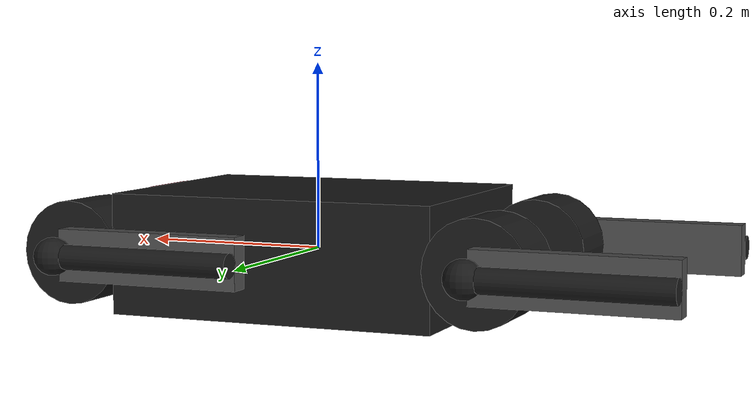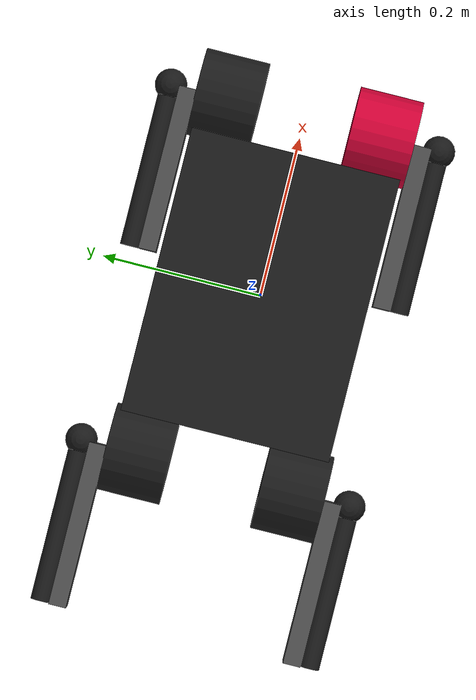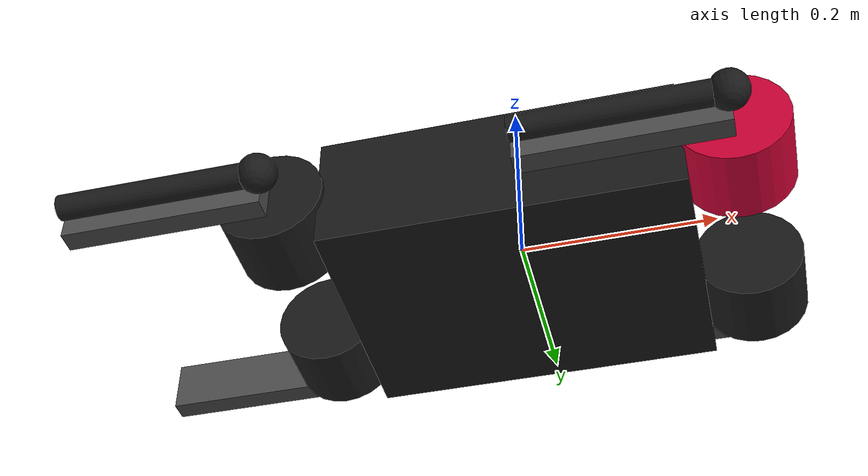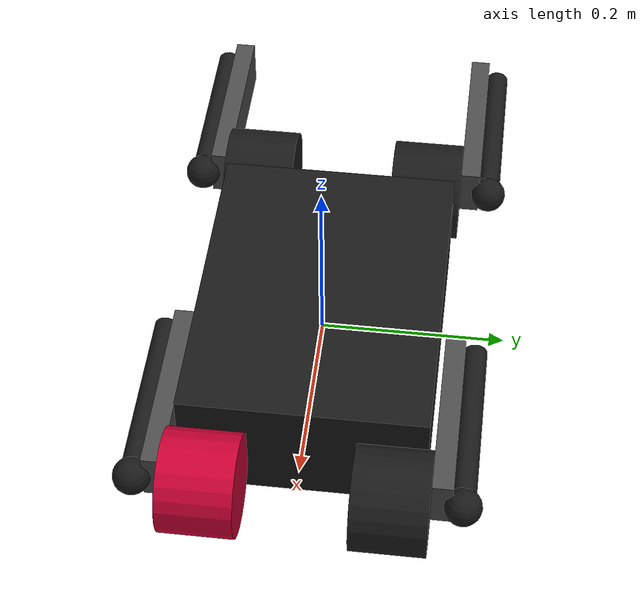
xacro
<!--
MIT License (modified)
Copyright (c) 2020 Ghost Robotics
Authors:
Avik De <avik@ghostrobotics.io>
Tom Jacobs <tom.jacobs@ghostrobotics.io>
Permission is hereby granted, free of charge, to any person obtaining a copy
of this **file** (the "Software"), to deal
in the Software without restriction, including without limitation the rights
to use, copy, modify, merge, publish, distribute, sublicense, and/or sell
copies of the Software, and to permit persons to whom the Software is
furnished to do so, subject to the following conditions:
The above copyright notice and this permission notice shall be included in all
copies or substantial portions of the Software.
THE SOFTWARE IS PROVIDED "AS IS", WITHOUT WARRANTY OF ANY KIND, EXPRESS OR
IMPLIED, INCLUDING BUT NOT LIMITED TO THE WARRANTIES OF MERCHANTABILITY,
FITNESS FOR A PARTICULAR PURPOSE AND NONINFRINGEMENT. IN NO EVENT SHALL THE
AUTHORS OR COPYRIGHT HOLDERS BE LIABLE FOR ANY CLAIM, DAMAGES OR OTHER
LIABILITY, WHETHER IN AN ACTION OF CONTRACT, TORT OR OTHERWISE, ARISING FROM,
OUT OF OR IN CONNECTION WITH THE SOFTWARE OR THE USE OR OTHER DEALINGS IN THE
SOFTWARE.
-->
<?xml version="1.0"?>

<robot xmlns:xacro="http://www.ros.org/wiki/xacro" name="ngr">

	<!-- Define parameters -->
	<!-- bodyLength + hipdx should be equal to front to back hip distance -->
	<!-- dy +  dPodAxisToEdge + upperLegWidth should be equal to the center to toe distance along y axis-->
	<xacro:property name="pi" value="3.14159265359"/>
	<xacro:property name="bodyLength" value="0.3563"/>
	<xacro:property name="bodyWidth" value="0.2627"/>
	<xacro:property name="bodyHeight" value="0.1279"/>
	<xacro:property name="bodyMass" value="5.8656"/>
	<xacro:property name="podMass" value="0.575"/>   <!-- what is this -->
	<xacro:property name="upperLegMass" value="2.823"/>  <!-- incl hip motor -->
	<xacro:property name="upperLegIxx" value="0.0026851"/>
	<xacro:property name="upperLegIyy" value="0.010059"/>
	<xacro:property name="upperLegIzz" value="0.0076466"/>
	<xacro:property name="lowerLegMass" value="1.0526"/>
	<xacro:property name="lowerLegIxx" value="0.00093898"/>
	<xacro:property name="lowerLegIyy" value="0.00042016"/>
	<xacro:property name="lowerLegIzz" value="0.00055413"/>
	<xacro:property name="toeMass" value="0.015"/>
	<xacro:property name="upperLegLength" value="0.206"/>
	<xacro:property name="upperLegWidth" value="0.022"/>
	<xacro:property name="upperLegHeight" value="0.055"/>
	<xacro:property name="lowerLegLength" value="0.206"/>
     <!-- below properties are from spirit descrp -->
	<xacro:property name="lowerLegRadius" value="0.013"/> <!--visual only-->
	<xacro:property name="podLength" value="0.08"/>
	<xacro:property name="podRadius" value="0.055"/>
	<xacro:property name="dPodAxisToEdge" value="0.028"/> <!--center of pod cylinder to the ab axis-->
	<xacro:property name="abOffs" value="0.10098"/>
	<xacro:property name="dx" value="0.2263"/>
	<xacro:property name="dy" value="0.07"/>
	<xacro:property name="toeRadius" value="0.02"/>
	<xacro:property name="toeOffset" value="0.0"/>
	<xacro:property name="toeStiffness" value="30000.0"/>
	<xacro:property name="toeDamping" value="1000.0"/>
	<xacro:property name="toeSpinningFriction" value="0.3"/>
	<xacro:property name="toeLateralFriction" value="3.0"/>
	<xacro:property name="abKinLimit" value="0.707"/>
	<xacro:property name="abSpeedLimit" value="30"/>
	<xacro:property name="abEffortLimit" value="40"/>
	<xacro:property name="jointSpeedLimit" value="30"/>
	<xacro:property name="jointEffortLimit" value="40"/>

	<!-- Define materials -->
	<material name="darkgray">
		<color rgba="0.1 0.1 0.1 1.0"/>
	</material>
	<material name="silver">
		<color rgba="0.3 0.3 0.3 1.0"/>
	</material>
	<material name="red">
		<color rgba="0.8 0.0 0.2 1.0"/>
	</material>

	<!-- Body -->
	<link name="body">
		<visual>
			<origin rpy="0 0 0" xyz="0 0 0"/>
			<geometry>
				<box size="${bodyLength} ${bodyWidth} ${bodyHeight}"/>
			</geometry>
			<material name="darkgray"/>
		</visual>

		<inertial>
			<mass value="${bodyMass}"/>
			<!-- Uniform box -->
			<inertia ixx="0.013581"  ixy="3.5039E-06"  ixz="0.00015791" iyy="0.039554" iyz="-2.9696E-06" izz="0.031018" />
		</inertial>

		<!-- Just copy geometry for collision -->
		<collision>
		<origin rpy="0 0 0" xyz="0 0 0"/>
			<geometry>
				<box size="${bodyLength} ${bodyWidth} ${bodyHeight}"/>
			</geometry>
		</collision>
	</link>

	<!-- Define our leg macro -->
	<xacro:macro name="leg" params="suffix left front hipJointName kneeJointName abductionJointName hipJointLowerLimit hipJointUpperLimit color">

		<!-- Hip motor -->
		<link name="hip${suffix}">
			<visual>
				<origin rpy="${pi/2} 0 0" xyz="${front * 0} ${left * (dPodAxisToEdge)} 0"/>
				<geometry>
					<cylinder length="${podLength}" radius="${podRadius}"/>
				</geometry>
				<material name="${color}"/>
			</visual>

			<collision>
				<origin rpy="${pi/2} 0 0" xyz="0 ${left * (dPodAxisToEdge)} 0"/>
				<geometry>
					<cylinder length="${podLength}" radius="${podRadius}"/>
				</geometry>
			</collision>

			<inertial>
				<mass value="${podMass}"/>
				<inertia ixx="0.00066963541"  ixy="0"  ixz="0" iyy="0.00066963541" iyz="0" izz="0.0008696875" />
			</inertial>
		</link>

		<!-- Abduction joint. Joint names are: 8 9 10 11 -->
		<joint name="${abductionJointName}" type="revolute">
			<parent link="body"/>
			<child link="hip${suffix}"/>
			<axis xyz="1 0 0"/>
			<origin xyz="${front * dx} ${left * dy} 0"/>
			<limit effort="${abEffortLimit}" velocity="${abSpeedLimit}" lower="${-abKinLimit}" upper="${abKinLimit}"/>
			<dynamics damping="0.0" friction="0.0"/>
		</joint>

		<!-- Upper leg -->
		<link name="upper${suffix}">
			<visual>
				<origin rpy="0 0 0" xyz="-${upperLegLength/2} ${-left*upperLegWidth} 0"/>
				<geometry>
					<box size="${upperLegLength} ${upperLegWidth} ${upperLegHeight}"/>
				</geometry>
				<material name="silver"/>
			</visual>

			<collision>
				<origin rpy="0 0 0" xyz="-${upperLegLength/2} ${-left*upperLegWidth} 0"/>
				<geometry>
					<box size="${upperLegLength} ${upperLegWidth} ${upperLegHeight}"/>
				</geometry>
			</collision>

			<inertial>
				<mass value="${upperLegMass}"/>
				<inertia ixx="${upperLegIxx}"  ixy="-6.2823E-05" ixz="-0.0022535" iyy="${upperLegIyy}" iyz="-8.5258E-05" izz="${upperLegIzz}"/>
			</inertial>
		</link>

		<!-- Hip joint. (Motor to upper leg). Joint names are: 0 2 4 6 -->
		<joint name="${hipJointName}" type="revolute">
			<parent link="hip${suffix}"/>
			<child link="upper${suffix}"/>
			<axis xyz="0 -1 0"/>
			<origin xyz="${front * 0} ${left * abOffs} 0"/> <!--  rpy="0 -0.3 0" -->
			<limit effort="${jointEffortLimit}" velocity="${jointSpeedLimit}" lower="${hipJointLowerLimit}" upper="${hipJointUpperLimit}"/>
			<dynamics damping="0.0" friction="0.0"/>
		</joint>

		<!-- Lower leg -->
		<link name="lower${suffix}">
			<visual>
				<origin rpy="0 ${pi/2} 0" xyz="${lowerLegLength/2} 0 0"/>
				<geometry>
					<cylinder length="${lowerLegLength}" radius="${lowerLegRadius}"/>
				</geometry>
				<material name="darkgray"/>
			</visual>

			<collision>
				<origin rpy="0 ${pi/2} 0" xyz="${lowerLegLength/2} 0 0"/>
				<geometry>
					<cylinder length="${lowerLegLength}" radius="${lowerLegRadius}"/>
				</geometry>
			</collision>

			<inertial>
				<mass value="${lowerLegMass}"/>
				<inertia ixx="${lowerLegIxx}"  ixy="-3.788E-05" ixz="1.0791E-05" iyy="${lowerLegIyy}" iyz="0.00017591" izz="${lowerLegIzz}"/>
			</inertial>
		</link>

		<!-- Knee joint. Joint names are: 1 3 5 7 -->
		<joint name="${kneeJointName}" type="revolute">
			<parent link="upper${suffix}"/>
			<child link="lower${suffix}"/>
			<axis xyz="0 1 0"/>
			<origin xyz="-${upperLegLength} 0 0"/> <!--rpy="0 0.5 0"-->
			<limit effort="${jointEffortLimit}" velocity="${jointSpeedLimit}" lower="0" upper="${pi}"/>
			<dynamics damping="0.0" friction="0.0"/>
		</joint>

		<!-- Toe -->
		<link name="toe${suffix}">
			<contact>
				<friction_anchor/>
				<stiffness value="${toeStiffness}"/>
				<damping value="${toeDamping}"/>
				<spinning_friction value="${toeSpinningFriction}"/>
				<lateral_friction value="${toeLateralFriction}"/>
			</contact>
			<visual>
				<origin rpy="0 0 0" xyz="0 0 0"/>
				<geometry>
					<sphere radius="${toeRadius}"/>
				</geometry>
				<material name="darkgray"/>
			</visual>

			<collision>
				<origin rpy="0 0 0" xyz="0 0 0"/>
				<geometry>
					<sphere radius="${toeRadius}"/>
				</geometry>
			</collision>

			<inertial>
				<mass value="${toeMass}"/>
				<inertia ixx="0.000025"  ixy="0"  ixz="0" iyy="0.000025" iyz="0" izz="0.000025" />
			</inertial>
		</link>
		<joint name="jtoe${suffix}" type="fixed">
			<parent link="lower${suffix}"/>
			<child link="toe${suffix}"/>
			<origin xyz="${lowerLegLength} 0 -${toeOffset}"/>
			<dynamics damping="0.0" friction="0.0"/>
		</joint>

	</xacro:macro>

	<!-- Our four legs -->
	<xacro:leg suffix="0" hipJointName="0" kneeJointName="1" abductionJointName="8" front="1" left="1" hipJointLowerLimit="${-2*pi}" hipJointUpperLimit="${2*pi}" color="darkgray"/>
 	<xacro:leg suffix="1" hipJointName="2" kneeJointName="3" abductionJointName="9" front="-1" left="1" hipJointLowerLimit="${-2*pi}" hipJointUpperLimit="${2*pi}" color="darkgray"/>
 	<xacro:leg suffix="2" hipJointName="4" kneeJointName="5" abductionJointName="10" front="1" left="-1" hipJointLowerLimit="${-2*pi}" hipJointUpperLimit="${2*pi}" color="red"/>
 	<xacro:leg suffix="3" hipJointName="6" kneeJointName="7" abductionJointName="11" front="-1" left="-1" hipJointLowerLimit="${-2*pi}" hipJointUpperLimit="${2*pi}" color="darkgray"/>
</robot>
